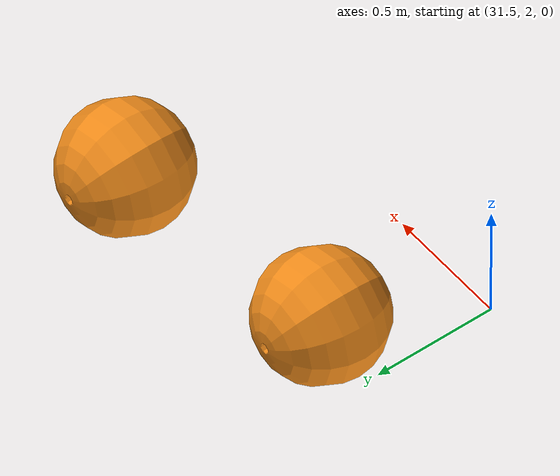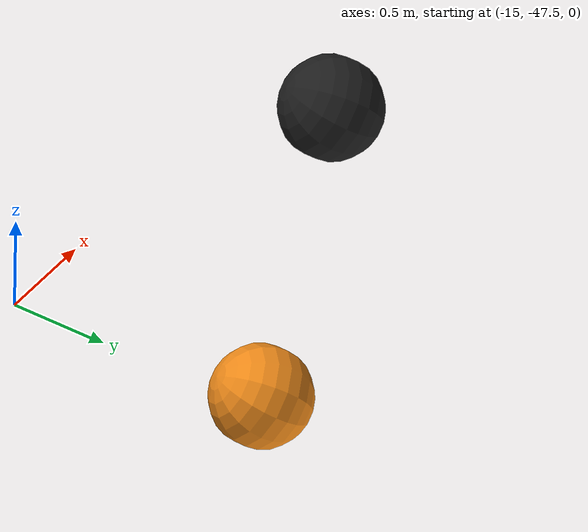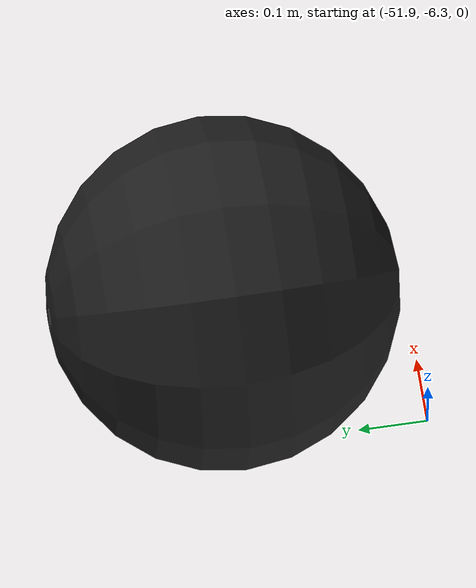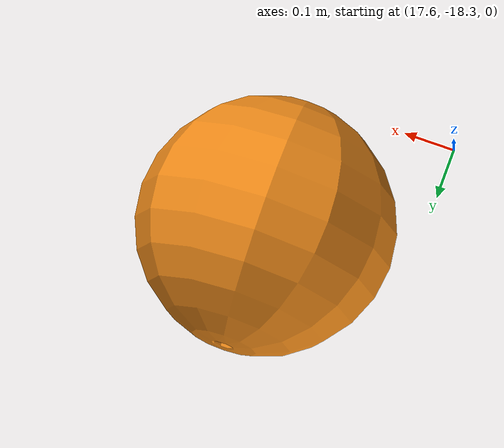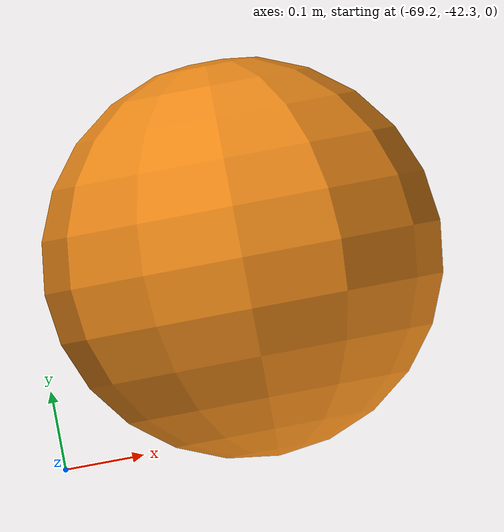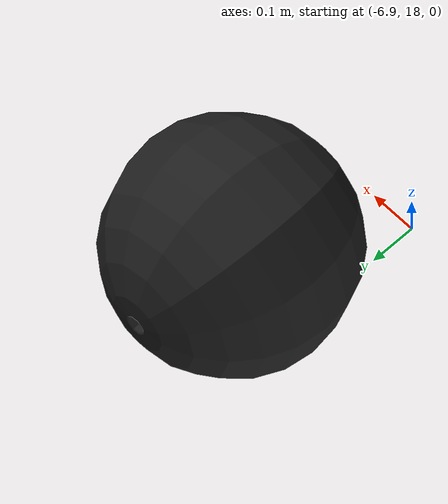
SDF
<?xml version="1.0"?>
<sdf version="1.6">
  <model name="robotx_obstacle_course">
    <include>
      <name>mb_round_buoy_black_0</name>
      <pose>-13.95491156 -25.35449915 0.0 0 0 0 </pose>
      <uri>https://fuel.gazebosim.org/1.0/openrobotics/models/mb_round_buoy_black</uri>
      <plugin name="vrx::PolyhedraBuoyancyDrag"
              filename="libPolyhedraBuoyancyDrag.so">
        <fluid_density>1000</fluid_density>
        <fluid_level>0.0</fluid_level>
        <linear_drag>25.0</linear_drag>
        <angular_drag>2.0</angular_drag>
        <buoyancy name="collision_outer">
          <link_name>link</link_name>
          <pose>0 0 0 0 0 0</pose>
          <geometry>
            <sphere>
              <radius>0.25</radius>
          </sphere>
          </geometry>
        </buoyancy>
        <wavefield>
          <size>1000 1000</size>
          <cell_count>50 50></cell_count>
          <wave>
            <model>PMS</model>
            <period>5.0</period>
            <number>3</number>
            <scale>1.1</scale>
            <gain>0.3</gain>
            <direction>1 0</direction>
            <angle>0.4</angle>
            <tau>2.0</tau>
            <amplitude>0.0</amplitude>
            <steepness>0.0</steepness>
          </wave>
        </wavefield>
      </plugin>
    </include>

    <include>
      <name>mb_round_buoy_black_1</name>
      <pose>7.71587819  37.31995694 0.0 0 0 0 </pose>
      <uri>https://fuel.gazebosim.org/1.0/openrobotics/models/mb_round_buoy_black</uri>
      <plugin name="vrx::PolyhedraBuoyancyDrag"
              filename="libPolyhedraBuoyancyDrag.so">
        <fluid_density>1000</fluid_density>
        <fluid_level>0.0</fluid_level>
        <linear_drag>25.0</linear_drag>
        <angular_drag>2.0</angular_drag>
        <buoyancy name="collision_outer">
          <link_name>link</link_name>
          <pose>0 0 0 0 0 0</pose>
          <geometry>
            <sphere>
              <radius>0.25</radius>
          </sphere>
          </geometry>
        </buoyancy>
        <wavefield>
          <size>1000 1000</size>
          <cell_count>50 50></cell_count>
          <wave>
            <model>PMS</model>
            <period>5.0</period>
            <number>3</number>
            <scale>1.1</scale>
            <gain>0.3</gain>
            <direction>1 0</direction>
            <angle>0.4</angle>
            <tau>2.0</tau>
            <amplitude>0.0</amplitude>
            <steepness>0.0</steepness>
          </wave>
        </wavefield>
      </plugin>
    </include>

    <include>
      <name>mb_round_buoy_black_2</name>
      <pose>-6.69036446  18.26817426 0.0 0 0 0 </pose>
      <uri>https://fuel.gazebosim.org/1.0/openrobotics/models/mb_round_buoy_black</uri>
      <plugin name="vrx::PolyhedraBuoyancyDrag"
              filename="libPolyhedraBuoyancyDrag.so">
        <fluid_density>1000</fluid_density>
        <fluid_level>0.0</fluid_level>
        <linear_drag>25.0</linear_drag>
        <angular_drag>2.0</angular_drag>
        <buoyancy name="collision_outer">
          <link_name>link</link_name>
          <pose>0 0 0 0 0 0</pose>
          <geometry>
            <sphere>
              <radius>0.25</radius>
          </sphere>
          </geometry>
        </buoyancy>
        <wavefield>
          <size>1000 1000</size>
          <cell_count>50 50></cell_count>
          <wave>
            <model>PMS</model>
            <period>5.0</period>
            <number>3</number>
            <scale>1.1</scale>
            <gain>0.3</gain>
            <direction>1 0</direction>
            <angle>0.4</angle>
            <tau>2.0</tau>
            <amplitude>0.0</amplitude>
            <steepness>0.0</steepness>
          </wave>
        </wavefield>
      </plugin>
    </include>

    <include>
      <name>mb_round_buoy_black_3</name>
      <pose> 31.12515658  -8.04971514 0.0 0 0 0 </pose>
      <uri>https://fuel.gazebosim.org/1.0/openrobotics/models/mb_round_buoy_black</uri>
      <plugin name="vrx::PolyhedraBuoyancyDrag"
              filename="libPolyhedraBuoyancyDrag.so">
        <fluid_density>1000</fluid_density>
        <fluid_level>0.0</fluid_level>
        <linear_drag>25.0</linear_drag>
        <angular_drag>2.0</angular_drag>
        <buoyancy name="collision_outer">
          <link_name>link</link_name>
          <pose>0 0 0 0 0 0</pose>
          <geometry>
            <sphere>
              <radius>0.25</radius>
          </sphere>
          </geometry>
        </buoyancy>
        <wavefield>
          <size>1000 1000</size>
          <cell_count>50 50></cell_count>
          <wave>
            <model>PMS</model>
            <period>5.0</period>
            <number>3</number>
            <scale>1.1</scale>
            <gain>0.3</gain>
            <direction>1 0</direction>
            <angle>0.4</angle>
            <tau>2.0</tau>
            <amplitude>0.0</amplitude>
            <steepness>0.0</steepness>
          </wave>
        </wavefield>
      </plugin>
    </include>

    <include>
      <name>mb_round_buoy_black_4</name>
      <pose>-51.65027868  -6.04370199 0.0 0 0 0 </pose>
      <uri>https://fuel.gazebosim.org/1.0/openrobotics/models/mb_round_buoy_black</uri>
      <plugin name="vrx::PolyhedraBuoyancyDrag"
              filename="libPolyhedraBuoyancyDrag.so">
        <fluid_density>1000</fluid_density>
        <fluid_level>0.0</fluid_level>
        <linear_drag>25.0</linear_drag>
        <angular_drag>2.0</angular_drag>
        <buoyancy name="collision_outer">
          <link_name>link</link_name>
          <pose>0 0 0 0 0 0</pose>
          <geometry>
            <sphere>
              <radius>0.25</radius>
          </sphere>
          </geometry>
        </buoyancy>
        <wavefield>
          <size>1000 1000</size>
          <cell_count>50 50></cell_count>
          <wave>
            <model>PMS</model>
            <period>5.0</period>
            <number>3</number>
            <scale>1.1</scale>
            <gain>0.3</gain>
            <direction>1 0</direction>
            <angle>0.4</angle>
            <tau>2.0</tau>
            <amplitude>0.0</amplitude>
            <steepness>0.0</steepness>
          </wave>
        </wavefield>
      </plugin>
    </include>

    <include>
      <name>mb_round_buoy_black_5</name>
      <pose>28.05545934  19.39557671 0.0 0 0 0 </pose>
      <uri>https://fuel.gazebosim.org/1.0/openrobotics/models/mb_round_buoy_black</uri>
      <plugin name="vrx::PolyhedraBuoyancyDrag"
              filename="libPolyhedraBuoyancyDrag.so">
        <fluid_density>1000</fluid_density>
        <fluid_level>0.0</fluid_level>
        <linear_drag>25.0</linear_drag>
        <angular_drag>2.0</angular_drag>
        <buoyancy name="collision_outer">
          <link_name>link</link_name>
          <pose>0 0 0 0 0 0</pose>
          <geometry>
            <sphere>
              <radius>0.25</radius>
          </sphere>
          </geometry>
        </buoyancy>
        <wavefield>
          <size>1000 1000</size>
          <cell_count>50 50></cell_count>
          <wave>
            <model>PMS</model>
            <period>5.0</period>
            <number>3</number>
            <scale>1.1</scale>
            <gain>0.3</gain>
            <direction>1 0</direction>
            <angle>0.4</angle>
            <tau>2.0</tau>
            <amplitude>0.0</amplitude>
            <steepness>0.0</steepness>
          </wave>
        </wavefield>
      </plugin>
    </include>

    <include>
      <name>mb_round_buoy_black_6</name>
      <pose>46.2135293014 -5.59469145311 0.0 0 0 0 </pose>
      <uri>https://fuel.gazebosim.org/1.0/openrobotics/models/mb_round_buoy_black</uri>
      <plugin name="vrx::PolyhedraBuoyancyDrag"
              filename="libPolyhedraBuoyancyDrag.so">
        <fluid_density>1000</fluid_density>
        <fluid_level>0.0</fluid_level>
        <linear_drag>25.0</linear_drag>
        <angular_drag>2.0</angular_drag>
        <buoyancy name="collision_outer">
          <link_name>link</link_name>
          <pose>0 0 0 0 0 0</pose>
          <geometry>
            <sphere>
              <radius>0.25</radius>
          </sphere>
          </geometry>
        </buoyancy>
        <wavefield>
          <size>1000 1000</size>
          <cell_count>50 50></cell_count>
          <wave>
            <model>PMS</model>
            <period>5.0</period>
            <number>3</number>
            <scale>1.1</scale>
            <gain>0.3</gain>
            <direction>1 0</direction>
            <angle>0.4</angle>
            <tau>2.0</tau>
            <amplitude>0.0</amplitude>
            <steepness>0.0</steepness>
          </wave>
        </wavefield>
      </plugin>
    </include>

    <include>
      <name>mb_round_buoy_black_7</name>
      <pose>-23.57401351  -8.88047873 0.0 0 0 0 </pose>
      <uri>https://fuel.gazebosim.org/1.0/openrobotics/models/mb_round_buoy_black</uri>
      <plugin name="vrx::PolyhedraBuoyancyDrag"
              filename="libPolyhedraBuoyancyDrag.so">
        <fluid_density>1000</fluid_density>
        <fluid_level>0.0</fluid_level>
        <linear_drag>25.0</linear_drag>
        <angular_drag>2.0</angular_drag>
        <buoyancy name="collision_outer">
          <link_name>link</link_name>
          <pose>0 0 0 0 0 0</pose>
          <geometry>
            <sphere>
              <radius>0.25</radius>
          </sphere>
          </geometry>
        </buoyancy>
        <wavefield>
          <size>1000 1000</size>
          <cell_count>50 50></cell_count>
          <wave>
            <model>PMS</model>
            <period>5.0</period>
            <number>3</number>
            <scale>1.1</scale>
            <gain>0.3</gain>
            <direction>1 0</direction>
            <angle>0.4</angle>
            <tau>2.0</tau>
            <amplitude>0.0</amplitude>
            <steepness>0.0</steepness>
          </wave>
        </wavefield>
      </plugin>
    </include>

    <include>
      <name>mb_round_buoy_black_8</name>
      <pose>-12.96886565 -47.10898357 0.0 0 0 0 </pose>
      <uri>https://fuel.gazebosim.org/1.0/openrobotics/models/mb_round_buoy_black</uri>
      <plugin name="vrx::PolyhedraBuoyancyDrag"
              filename="libPolyhedraBuoyancyDrag.so">
        <fluid_density>1000</fluid_density>
        <fluid_level>0.0</fluid_level>
        <linear_drag>25.0</linear_drag>
        <angular_drag>2.0</angular_drag>
        <buoyancy name="collision_outer">
          <link_name>link</link_name>
          <pose>0 0 0 0 0 0</pose>
          <geometry>
            <sphere>
              <radius>0.25</radius>
          </sphere>
          </geometry>
        </buoyancy>
        <wavefield>
          <size>1000 1000</size>
          <cell_count>50 50></cell_count>
          <wave>
            <model>PMS</model>
            <period>5.0</period>
            <number>3</number>
            <scale>1.1</scale>
            <gain>0.3</gain>
            <direction>1 0</direction>
            <angle>0.4</angle>
            <tau>2.0</tau>
            <amplitude>0.0</amplitude>
            <steepness>0.0</steepness>
          </wave>
        </wavefield>
      </plugin>
    </include>

    <include>
      <name>mb_round_buoy_black_9</name>
      <pose>13.81544835  -5.73134056 0.0 0 0 0 </pose>
      <uri>https://fuel.gazebosim.org/1.0/openrobotics/models/mb_round_buoy_black</uri>
      <plugin name="vrx::PolyhedraBuoyancyDrag"
              filename="libPolyhedraBuoyancyDrag.so">
        <fluid_density>1000</fluid_density>
        <fluid_level>0.0</fluid_level>
        <linear_drag>25.0</linear_drag>
        <angular_drag>2.0</angular_drag>
        <buoyancy name="collision_outer">
          <link_name>link</link_name>
          <pose>0 0 0 0 0 0</pose>
          <geometry>
            <sphere>
              <radius>0.25</radius>
          </sphere>
          </geometry>
        </buoyancy>
        <wavefield>
          <size>1000 1000</size>
          <cell_count>50 50></cell_count>
          <wave>
            <model>PMS</model>
            <period>5.0</period>
            <number>3</number>
            <scale>1.1</scale>
            <gain>0.3</gain>
            <direction>1 0</direction>
            <angle>0.4</angle>
            <tau>2.0</tau>
            <amplitude>0.0</amplitude>
            <steepness>0.0</steepness>
          </wave>
        </wavefield>
      </plugin>
    </include>

    <include>
      <name>mb_round_buoy_black_10</name>
      <pose>-3.65783836 -17.10255278 0.0 0 0 0 </pose>
      <uri>https://fuel.gazebosim.org/1.0/openrobotics/models/mb_round_buoy_black</uri>
      <plugin name="vrx::PolyhedraBuoyancyDrag"
              filename="libPolyhedraBuoyancyDrag.so">
        <fluid_density>1000</fluid_density>
        <fluid_level>0.0</fluid_level>
        <linear_drag>25.0</linear_drag>
        <angular_drag>2.0</angular_drag>
        <buoyancy name="collision_outer">
          <link_name>link</link_name>
          <pose>0 0 0 0 0 0</pose>
          <geometry>
            <sphere>
              <radius>0.25</radius>
          </sphere>
          </geometry>
        </buoyancy>
        <wavefield>
          <size>1000 1000</size>
          <cell_count>50 50></cell_count>
          <wave>
            <model>PMS</model>
            <period>5.0</period>
            <number>3</number>
            <scale>1.1</scale>
            <gain>0.3</gain>
            <direction>1 0</direction>
            <angle>0.4</angle>
            <tau>2.0</tau>
            <amplitude>0.0</amplitude>
            <steepness>0.0</steepness>
          </wave>
        </wavefield>
      </plugin>
    </include>

    <include>
      <name>mb_round_buoy_black_11</name>
      <pose>41.18085609  24.4716514 0.0 0 0 0 </pose>
      <uri>https://fuel.gazebosim.org/1.0/openrobotics/models/mb_round_buoy_black</uri>
      <plugin name="vrx::PolyhedraBuoyancyDrag"
              filename="libPolyhedraBuoyancyDrag.so">
        <fluid_density>1000</fluid_density>
        <fluid_level>0.0</fluid_level>
        <linear_drag>25.0</linear_drag>
        <angular_drag>2.0</angular_drag>
        <buoyancy name="collision_outer">
          <link_name>link</link_name>
          <pose>0 0 0 0 0 0</pose>
          <geometry>
            <sphere>
              <radius>0.25</radius>
          </sphere>
          </geometry>
        </buoyancy>
        <wavefield>
          <size>1000 1000</size>
          <cell_count>50 50></cell_count>
          <wave>
            <model>PMS</model>
            <period>5.0</period>
            <number>3</number>
            <scale>1.1</scale>
            <gain>0.3</gain>
            <direction>1 0</direction>
            <angle>0.4</angle>
            <tau>2.0</tau>
            <amplitude>0.0</amplitude>
            <steepness>0.0</steepness>
          </wave>
        </wavefield>
      </plugin>
    </include>

    <include>
      <name>mb_round_buoy_orange_0</name>
      <pose>32.80793763   2.60427048 0.0 0 0 0 </pose>
      <uri>https://fuel.gazebosim.org/1.0/openrobotics/models/mb_round_buoy_orange</uri>
      <plugin name="vrx::PolyhedraBuoyancyDrag"
              filename="libPolyhedraBuoyancyDrag.so">
        <fluid_density>1000</fluid_density>
        <fluid_level>0.0</fluid_level>
        <linear_drag>25.0</linear_drag>
        <angular_drag>2.0</angular_drag>
        <buoyancy name="collision_outer">
          <link_name>link</link_name>
          <pose>0 0 0 0 0 0</pose>
          <geometry>
            <sphere>
              <radius>0.25</radius>
          </sphere>
          </geometry>
        </buoyancy>
        <wavefield>
          <size>1000 1000</size>
          <cell_count>50 50></cell_count>
          <wave>
            <model>PMS</model>
            <period>5.0</period>
            <number>3</number>
            <scale>1.1</scale>
            <gain>0.3</gain>
            <direction>1 0</direction>
            <angle>0.4</angle>
            <tau>2.0</tau>
            <amplitude>0.0</amplitude>
            <steepness>0.0</steepness>
          </wave>
        </wavefield>
      </plugin>
    </include>

    <include>
      <name>mb_round_buoy_orange_1</name>
      <pose>-68.93127611 -42.07725144 0.0 0 0 0 </pose>
      <plugin name="vrx::PolyhedraBuoyancyDrag"
              filename="libPolyhedraBuoyancyDrag.so">
        <fluid_density>1000</fluid_density>
        <fluid_level>0.0</fluid_level>
        <linear_drag>25.0</linear_drag>
        <angular_drag>2.0</angular_drag>
        <buoyancy name="collision_outer">
          <link_name>link</link_name>
          <pose>0 0 0 0 0 0</pose>
          <geometry>
            <sphere>
              <radius>0.25</radius>
          </sphere>
          </geometry>
        </buoyancy>
        <wavefield>
          <size>1000 1000</size>
          <cell_count>50 50></cell_count>
          <wave>
            <model>PMS</model>
            <period>5.0</period>
            <number>3</number>
            <scale>1.1</scale>
            <gain>0.3</gain>
            <direction>1 0</direction>
            <angle>0.4</angle>
            <tau>2.0</tau>
            <amplitude>0.0</amplitude>
            <steepness>0.0</steepness>
          </wave>
        </wavefield>
      </plugin>
      <uri>https://fuel.gazebosim.org/1.0/openrobotics/models/mb_round_buoy_orange</uri>
    </include>

    <include>
      <name>mb_round_buoy_orange_2</name>
      <pose> -13.17598349   0.55872345 0.0 0 0 0 </pose>
      <uri>https://fuel.gazebosim.org/1.0/openrobotics/models/mb_round_buoy_orange</uri>
      <plugin name="vrx::PolyhedraBuoyancyDrag"
              filename="libPolyhedraBuoyancyDrag.so">
        <fluid_density>1000</fluid_density>
        <fluid_level>0.0</fluid_level>
        <linear_drag>25.0</linear_drag>
        <angular_drag>2.0</angular_drag>
        <buoyancy name="collision_outer">
          <link_name>link</link_name>
          <pose>0 0 0 0 0 0</pose>
          <geometry>
            <sphere>
              <radius>0.25</radius>
          </sphere>
          </geometry>
        </buoyancy>
        <wavefield>
          <size>1000 1000</size>
          <cell_count>50 50></cell_count>
          <wave>
            <model>PMS</model>
            <period>5.0</period>
            <number>3</number>
            <scale>1.1</scale>
            <gain>0.3</gain>
            <direction>1 0</direction>
            <angle>0.4</angle>
            <tau>2.0</tau>
            <amplitude>0.0</amplitude>
            <steepness>0.0</steepness>
          </wave>
        </wavefield>
      </plugin>
    </include>

    <include>
      <name>mb_round_buoy_orange_3</name>
      <pose>-14.90379316 -46.16465368 0.0 0 0 0 </pose>
      <uri>https://fuel.gazebosim.org/1.0/openrobotics/models/mb_round_buoy_orange</uri>
      <plugin name="vrx::PolyhedraBuoyancyDrag"
              filename="libPolyhedraBuoyancyDrag.so">
        <fluid_density>1000</fluid_density>
        <fluid_level>0.0</fluid_level>
        <linear_drag>25.0</linear_drag>
        <angular_drag>2.0</angular_drag>
        <buoyancy name="collision_outer">
          <link_name>link</link_name>
          <pose>0 0 0 0 0 0</pose>
          <geometry>
            <sphere>
              <radius>0.25</radius>
          </sphere>
          </geometry>
        </buoyancy>
        <wavefield>
          <size>1000 1000</size>
          <cell_count>50 50></cell_count>
          <wave>
            <model>PMS</model>
            <period>5.0</period>
            <number>3</number>
            <scale>1.1</scale>
            <gain>0.3</gain>
            <direction>1 0</direction>
            <angle>0.4</angle>
            <tau>2.0</tau>
            <amplitude>0.0</amplitude>
            <steepness>0.0</steepness>
          </wave>
        </wavefield>
      </plugin>
    </include>

    <include>
      <name>mb_round_buoy_orange_4</name>
      <pose> 17.89343713 -18.0378292 0.0 0 0 0 </pose>
      <uri>https://fuel.gazebosim.org/1.0/openrobotics/models/mb_round_buoy_orange</uri>
      <plugin name="vrx::PolyhedraBuoyancyDrag"
              filename="libPolyhedraBuoyancyDrag.so">
        <fluid_density>1000</fluid_density>
        <fluid_level>0.0</fluid_level>
        <linear_drag>25.0</linear_drag>
        <angular_drag>2.0</angular_drag>
        <buoyancy name="collision_outer">
          <link_name>link</link_name>
          <pose>0 0 0 0 0 0</pose>
          <geometry>
            <sphere>
              <radius>0.25</radius>
          </sphere>
          </geometry>
        </buoyancy>
        <wavefield>
          <size>1000 1000</size>
          <cell_count>50 50></cell_count>
          <wave>
            <model>PMS</model>
            <period>5.0</period>
            <number>3</number>
            <scale>1.1</scale>
            <gain>0.3</gain>
            <direction>1 0</direction>
            <angle>0.4</angle>
            <tau>2.0</tau>
            <amplitude>0.0</amplitude>
            <steepness>0.0</steepness>
          </wave>
        </wavefield>
      </plugin>
    </include>

    <include>
      <name>mb_round_buoy_orange_5</name>
      <pose> 31.84129529   2.48724042 0.0 0 0 0 </pose>
      <uri>https://fuel.gazebosim.org/1.0/openrobotics/models/mb_round_buoy_orange</uri>
      <plugin name="vrx::PolyhedraBuoyancyDrag"
              filename="libPolyhedraBuoyancyDrag.so">
        <fluid_density>1000</fluid_density>
        <fluid_level>0.0</fluid_level>
        <linear_drag>25.0</linear_drag>
        <angular_drag>2.0</angular_drag>
        <buoyancy name="collision_outer">
          <link_name>link</link_name>
          <pose>0 0 0 0 0 0</pose>
          <geometry>
            <sphere>
              <radius>0.25</radius>
          </sphere>
          </geometry>
        </buoyancy>
        <wavefield>
          <size>1000 1000</size>
          <cell_count>50 50></cell_count>
          <wave>
            <model>PMS</model>
            <period>5.0</period>
            <number>3</number>
            <scale>1.1</scale>
            <gain>0.3</gain>
            <direction>1 0</direction>
            <angle>0.4</angle>
            <tau>2.0</tau>
            <amplitude>0.0</amplitude>
            <steepness>0.0</steepness>
          </wave>
        </wavefield>
      </plugin>
    </include>

    <include>
      <name>mb_round_buoy_orange_6</name>
      <pose> 46.90593789 -64.26964395 0.0 0 0 0 </pose>
      <uri>https://fuel.gazebosim.org/1.0/openrobotics/models/mb_round_buoy_orange</uri>
      <plugin name="vrx::PolyhedraBuoyancyDrag"
              filename="libPolyhedraBuoyancyDrag.so">
        <fluid_density>1000</fluid_density>
        <fluid_level>0.0</fluid_level>
        <linear_drag>25.0</linear_drag>
        <angular_drag>2.0</angular_drag>
        <buoyancy name="collision_outer">
          <link_name>link</link_name>
          <pose>0 0 0 0 0 0</pose>
          <geometry>
            <sphere>
              <radius>0.25</radius>
          </sphere>
          </geometry>
        </buoyancy>
        <wavefield>
          <size>1000 1000</size>
          <cell_count>50 50></cell_count>
          <wave>
            <model>PMS</model>
            <period>5.0</period>
            <number>3</number>
            <scale>1.1</scale>
            <gain>0.3</gain>
            <direction>1 0</direction>
            <angle>0.4</angle>
            <tau>2.0</tau>
            <amplitude>0.0</amplitude>
            <steepness>0.0</steepness>
          </wave>
        </wavefield>
      </plugin>
    </include>

  </model>
</sdf>

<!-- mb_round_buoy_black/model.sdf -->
<sdf version="1.6">
  <model name="mb_round_buoy_black">
    <link name="link">
      <inertial>
        <pose>0 0 -2 0 0 0</pose>
        <!-- Mass determined based on buoyancy geometry so object
             floats at mid-point of sphere -->
        <mass>3.5</mass>
        <!-- Mark only - based on cylinder -->
        <inertia>
          <ixx>1.0</ixx>
          <ixy>0</ixy>
          <ixz>0</ixz>
          <iyy>1.0</iyy>
          <iyz>0</iyz>
          <izz>0.1</izz>
        </inertia>
      </inertial>
      <collision name="collision">
        <geometry>
          <sphere>
            <radius>0.25</radius>
          </sphere>
        </geometry>
      </collision>
      <visual name="visual">
        <geometry>
	        <mesh><uri>model://mb_round_buoy_orange/meshes/mb_round_buoy.dae</uri></mesh>
        </geometry>
        <material>
          <script>
            <uri>file://media/materials/scripts/gazebo.material</uri>
            <name>Gazebo/Black</name>
          </script>
        </material>
      </visual>
    </link>
    <plugin name="BuoyancyPlugin" filename="libbuoyancy_gazebo_plugin.so">
      <wave_model>ocean_waves</wave_model>
      <fluid_density>1000</fluid_density>
      <fluid_level>0.0</fluid_level>
      <linear_drag>25.0</linear_drag>
      <angular_drag>2.0</angular_drag>
      <buoyancy name="buoyancy_sphere">
        <link_name>link</link_name>
        <pose>0 0 0.02 0 0 0</pose>
        <geometry>
          <sphere>
            <radius>0.235</radius>
          </sphere>
        </geometry>
      </buoyancy>
    </plugin>
  </model>
</sdf>

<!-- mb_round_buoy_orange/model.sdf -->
<sdf version="1.6">
  <model name="mb_round_buoy_orange">
    <link name="link">
      <inertial>
        <pose>0 0 -2 0 0 0</pose>
        <!-- Mass determined based on buoyancy geometry so object
             floats at mid-point of sphere -->
        <mass>3.5</mass>
        <!-- Mark only - based on cylinder -->
        <inertia>
          <ixx>1.0</ixx>
          <ixy>0</ixy>
          <ixz>0</ixz>
          <iyy>1.0</iyy>
          <iyz>0</iyz>
          <izz>0.1</izz>
        </inertia>
      </inertial>
      <collision name="collision">
        <geometry>
          <sphere>
            <radius>0.25</radius>
          </sphere>
        </geometry>
      </collision>
      <visual name="visual">
        <geometry>
	        <mesh><uri>model://mb_round_buoy_orange/meshes/mb_round_buoy.dae</uri></mesh>
        </geometry>
        <material>
          <script>
            <uri>model://mb_round_buoy_orange/materials/scripts/mb_round_buoy.material</uri>
            <name>mb_round_buoy/Orange</name>
          </script>
        </material>
      </visual>
    </link>
    <plugin name="BuoyancyPlugin" filename="libbuoyancy_gazebo_plugin.so">
      <wave_model>ocean_waves</wave_model>
      <fluid_density>1000</fluid_density>
      <fluid_level>0.0</fluid_level>
      <linear_drag>25.0</linear_drag>
      <angular_drag>2.0</angular_drag>
      <buoyancy name="buoyancy_sphere">
        <link_name>link</link_name>
        <pose>0 0 0.02 0 0 0</pose>
        <geometry>
          <sphere>
            <radius>0.235</radius>
          </sphere>
        </geometry>
      </buoyancy>
    </plugin>
  </model>
</sdf>
